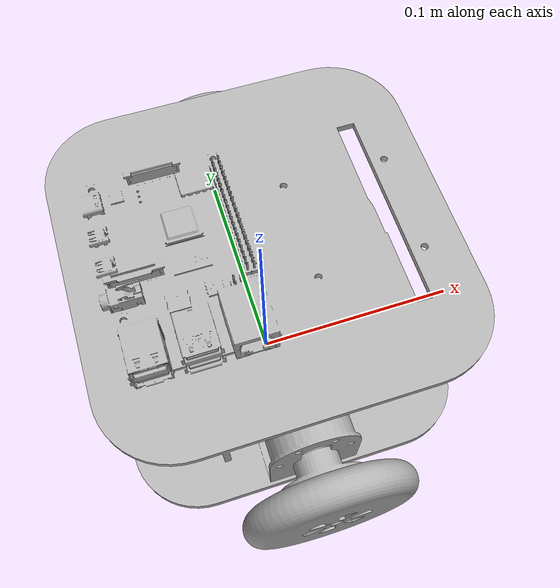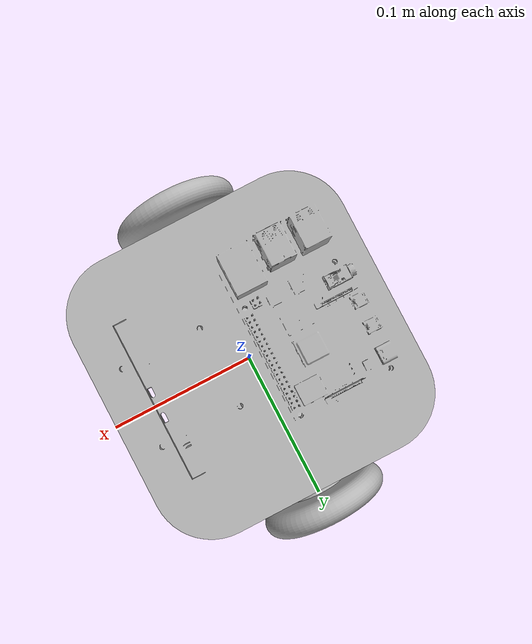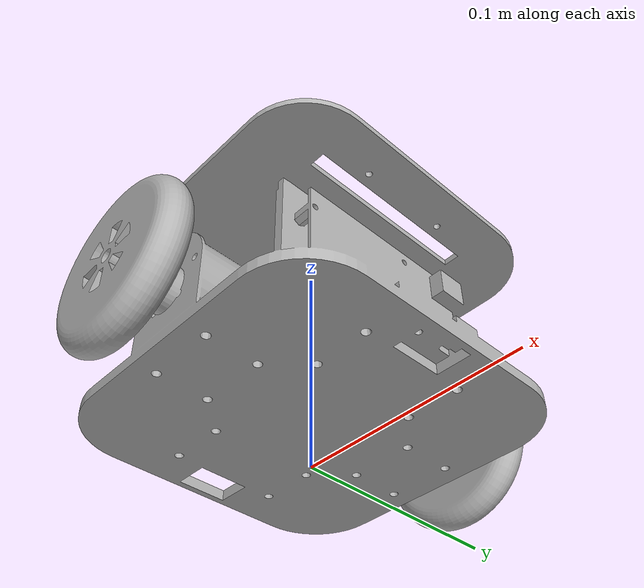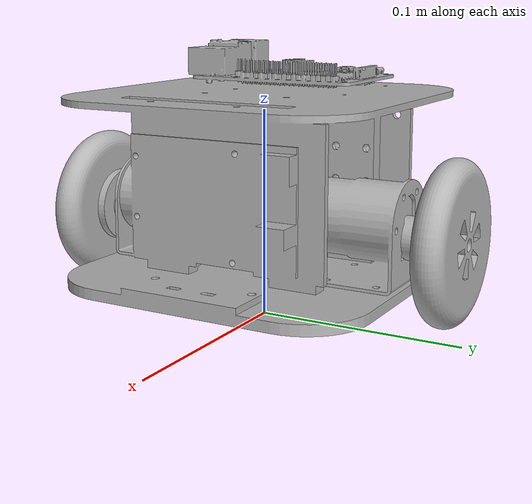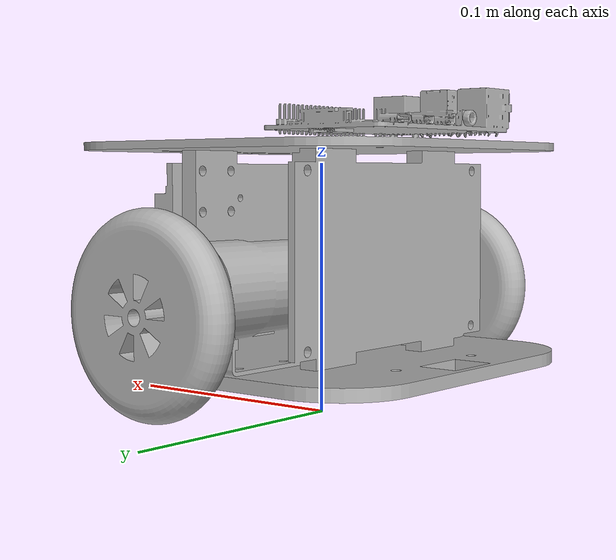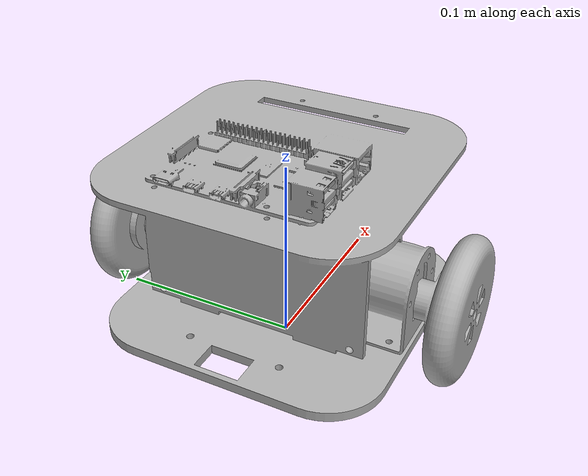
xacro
<?xml version="1.0" ?>
<robot name="arobota2" xmlns:xacro="http://www.ros.org/wiki/xacro">

<xacro:include filename="$(find arobota2_description)/urdf/materials.xacro" />
<xacro:include filename="$(find arobota2_description)/urdf/arobota2.trans" />
<xacro:include filename="$(find arobota2_description)/urdf/arobota2.gazebo" />

<link name="base_footprint"/>

<joint name="base_joint" type="fixed">
  <origin xyz="0 0 0.02" rpy="0 0 1.57" />
  <parent link="base_footprint"/>
  <child link="base_link" />
</joint>

<link name="base_link">
  <inertial>
    <origin xyz="0.025849766118147825 0.0 0.03881966145827727" rpy="0 0 0"/>
    <mass value="3.209815868392884"/>
    <inertia ixx="0.006859" iyy="0.008899" izz="0.009206" ixy="0.000105" iyz="-0.000357" ixz="0.000142"/>
  </inertial>
  <visual>
    <origin xyz="-0.02641 0.275004 0" rpy="0 0 0"/>
    <geometry>
      <mesh filename="package://arobota2_description/meshes/base_link.stl" scale="0.001 0.001 0.001"/>
    </geometry>
    <material name="silver"/>
  </visual>
  <collision>
    <origin xyz="-0.02641 0.275004 0" rpy="0 0 0"/>
    <geometry>
      <mesh filename="package://arobota2_description/meshes/base_link.stl" scale="0.001 0.001 0.001"/>
    </geometry>
  </collision>
</link>

<link name="wheel_right_1">
  <inertial>
    <origin xyz="-0.02014975433258679 -2.6938424269040695e-08 -3.341489744589088e-07" rpy="0 0 0"/>
    <mass value="0.49277229166154995"/>
    <inertia ixx="0.000313" iyy="0.000172" izz="0.000172" ixy="0.0" iyz="-0.0" ixz="-0.0"/>
  </inertial>
  <visual>
    <origin xyz="0.04609 0.275004 -0.025996" rpy="0 0 0"/>
    <geometry>
      <mesh filename="package://arobota2_description/meshes/wheel_right_1.stl" scale="0.001 0.001 0.001"/>
    </geometry>
    <material name="silver"/>
  </visual>
  <collision>
    <origin xyz="0.04609 0.275004 -0.025996" rpy="0 0 0"/>
    <geometry>
      <mesh filename="package://arobota2_description/meshes/wheel_right_1.stl" scale="0.001 0.001 0.001"/>
    </geometry>
  </collision>
</link>

<link name="wheel_left_1">
  <inertial>
    <origin xyz="0.020149235532235063 0.0 -3.95768489168391e-07" rpy="0 0 0"/>
    <mass value="0.49277229166154995"/>
    <inertia ixx="0.000313" iyy="0.000172" izz="0.000172" ixy="0.0" iyz="-0.0" ixz="0.0"/>
  </inertial>
  <visual>
    <origin xyz="-0.09891 0.275 -0.02675" rpy="0 0 0"/>
    <geometry>
      <mesh filename="package://arobota2_description/meshes/wheel_left_1.stl" scale="0.001 0.001 0.001"/>
    </geometry>
    <material name="silver"/>
  </visual>
  <collision>
    <origin xyz="-0.09891 0.275 -0.02675" rpy="0 0 0"/>
    <geometry>
      <mesh filename="package://arobota2_description/meshes/wheel_left_1.stl" scale="0.001 0.001 0.001"/>
    </geometry>
  </collision>
</link>

<link name="laser">
    <inertial>
      <origin xyz="0 0 0" rpy="0 0 0"/>
      <mass value="0.125"/>
      <inertia ixx="0.000"  ixy="0"  ixz="0" iyy="0.000" iyz="0" izz="0.001" />
    </inertial>
</link>

<joint name="lidar_joint" type="fixed">
  <parent link="base_link"/>
  <child link="laser"/>
  <origin xyz="0 -0.03 0.15" rpy="0 0 1.57"/>
</joint>

<joint name="Rev13" type="continuous">
  <origin xyz="-0.0725 0.0 0.025996" rpy="0 0 0"/>
  <parent link="base_link"/>
  <child link="wheel_right_1"/>
  <axis xyz="-1.0 0.0 0.0"/>
</joint>

<joint name="Rev14" type="continuous">
  <origin xyz="0.0725 0.0 0.02675" rpy="0 0 0"/>
  <parent link="base_link"/>
  <child link="wheel_left_1"/>
  <axis xyz="1.0 0.0 -0.0"/>
</joint>

</robot>

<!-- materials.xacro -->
<robot name="arobota2" xmlns:xacro="http://www.ros.org/wiki/xacro" >

<material name="silver">
  <color rgba="0.700 0.700 0.700 1.000"/>
</material>

</robot>

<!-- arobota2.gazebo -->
<robot name="arobota2" xmlns:xacro="http://www.ros.org/wiki/xacro" >

<xacro:property name="body_color" value="Gazebo/Silver" />

<gazebo>
  <plugin name="control" filename="libgazebo_ros_control.so"/>
</gazebo>
<gazebo reference="base_link">
  <material>${body_color}</material>
  <mu1>0.2</mu1>
  <mu2>0.2</mu2>
  <selfCollide>true</selfCollide>
  <gravity>true</gravity>
</gazebo>

<gazebo reference="wheel_right_1">
  <material>${body_color}</material>
  <mu1>0.2</mu1>
  <mu2>0.2</mu2>
  <selfCollide>true</selfCollide>
</gazebo>

<gazebo reference="wheel_left_1">
  <material>${body_color}</material>
  <mu1>0.2</mu1>
  <mu2>0.2</mu2>
  <selfCollide>true</selfCollide>
</gazebo>

</robot>
